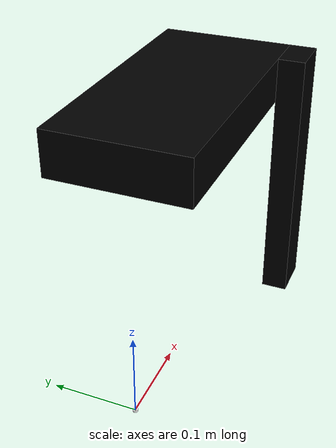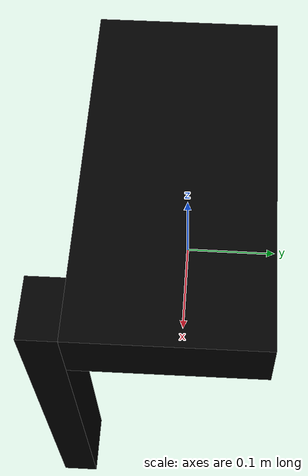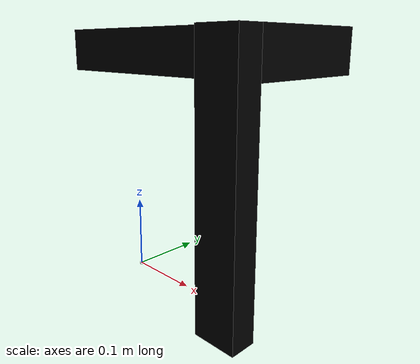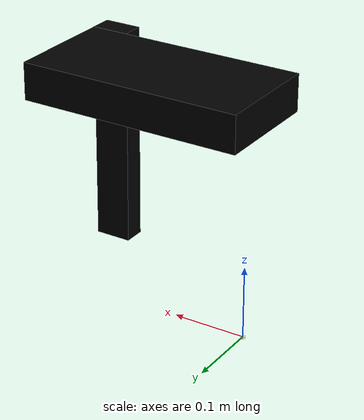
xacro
<?xml version="1.0"?>
<robot xmlns:xacro="http://ros.org/wiki/xacro" name="chienpanze">

    <xacro:property name="MAX_SPEED"    value="5.5"  />
    <xacro:property name="MIN_SPEED"    value="0.0"  />

    <xacro:property name="WHEEL_RADIUS" value="0.04" />
    <xacro:property name="WHEEL_WIDTH"  value="0.05"  />
    <xacro:property name="WHEELBASE"    value="0.5"  />
    <xacro:property name="WHEEL_MASS"   value="0.3"  />

    <xacro:property name="HEIGHT"       value="0.05" />
    <xacro:property name="LENGTH"       value="0.3"  />
    <xacro:property name="WIDTH"        value="0.15" />
    <xacro:property name="MASS"         value="3"    />

    <xacro:property name="LEG_WIDTH"    value="0.03" />
    <xacro:property name="LEG_HEIGHT"   value="0.3"  />
    <xacro:property name="LEG_LENGTH"   value="0.05" />
    <xacro:property name="LEG_MASS"     value="0.1"  />

    <material name="black">
        <color rgba="0 0 0 1" />
    </material>
    <material name="white">
        <color rgba="1 1 1 1" />
    </material>
    <material name="blue">
        <color rgba="0.2 0.2 1 1" />
    </material>

    <!-- the base link located in the middle of the line between the center of both back wheels -->
    <link name="base_link">
        <visual>
            <geometry>
                <cylinder length="0.003" radius="0.003"/>
            </geometry>
            <origin xyz="0 0 0" rpy="0 0 0"/>
            <material name="white" />
        </visual>
    </link>

                    <!-- ####################### JOINTS ########################## -->

    <joint name="chassis_joint" type="fixed">
        <origin xyz="0 0 0" rpy="0 0 0" />
        <parent link="base_link" />
        <child link="chassis" />
    </joint>

                                        <!-- WHEEL JOINTS -->

                                <!-- LEG JOINTS = FIXED -->

    <joint name="upper_leg_joint" type="continuous">
        <origin xyz="${LENGTH - LEG_LENGTH} ${-((WIDTH/2)+(LEG_WIDTH/2))} ${LEG_HEIGHT/2 + WHEEL_RADIUS}"
            rpy="0 0 0" />
        <parent link="base_link" />
        <child link="upper_leg_link" />
    </joint>

                    <!-- ####################### LINKS ########################## -->

    <link name="chassis">
        <visual>
            <geometry>
                <box size="${LENGTH} ${WIDTH} ${HEIGHT}" />
            </geometry>
            <origin xyz="${LENGTH/2 - LEG_LENGTH/2} 0 ${LEG_HEIGHT - HEIGHT/2 + WHEEL_RADIUS}" rpy="0 0 0"/>
            <material name="black" />
        </visual>
        <collision>
            <geometry>
                <box size="${LENGTH} ${WIDTH} ${HEIGHT}" />
            </geometry>
            <origin xyz="${LENGTH/2 - LEG_LENGTH/2} 0 ${LEG_HEIGHT - HEIGHT/2 + WHEEL_RADIUS}" rpy="0 0 0"/>
        </collision>
    </link>

                                        <!-- LEG LINKS -->

    <link name="upper_leg_link">
        <visual>
            <geometry>
                <box size="${LEG_LENGTH} ${LEG_WIDTH} ${LEG_HEIGHT}" />
            </geometry>
            <material name="black" />
        </visual>
        <collision>
            <geometry>
                <box size="${LEG_LENGTH} ${LEG_WIDTH} ${LEG_HEIGHT}" />
            </geometry>
        </collision>
    </link>

    <!-- ROS2-CONTROL -->

    <ros2_control name="chienpanze" type="system">
      <hardware>
        <plugin>mock_components/GenericSystem</plugin>
      </hardware>

      <joint name="upper_leg_joint">
        <command_interface name="position">
          <param name="min">{-2*pi}</param>
          <param name="max">{2*pi}</param>
        </command_interface>

        <state_interface name="position">
          <param name="initial_value">0.0</param>
        </state_interface>

      </joint>

    </ros2_control>

</robot>
